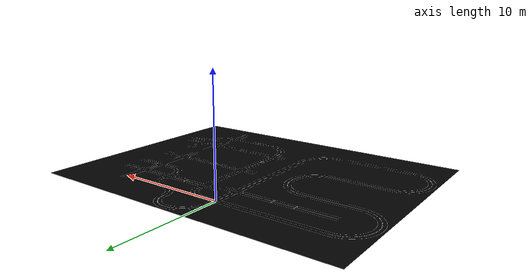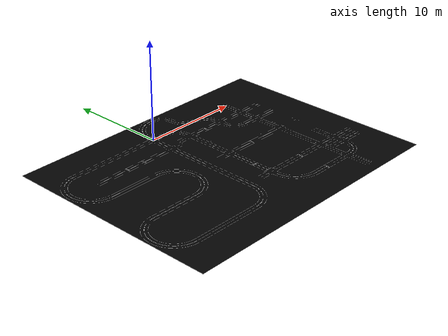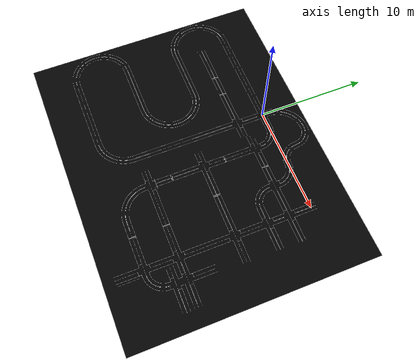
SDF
<?xml version="1.0" ?>
<sdf version="1.6">
  <model name="autcup_city_white_mark">
    <static>true</static>

    <link name="link">
      <collision name="collision">
        <geometry>
          <mesh>
            <uri>model://autocone_description/urdf/models/autcup_city_white_mark/autcup_city_white_mark.dae</uri>
          </mesh>
        </geometry>
        <surface>
            <contact>
              <collide_without_contact>true</collide_without_contact>
            </contact>
          </surface>

      </collision>

      <visual name="visual">
        <cast_shadows>true</cast_shadows>
        <geometry>
          <mesh>
            <uri>model://autocone_description/urdf/models/autcup_city_white_mark/autcup_city_white_mark.dae</uri>
          </mesh>
        </geometry>
      </visual>
    </link>
  </model>
</sdf>
